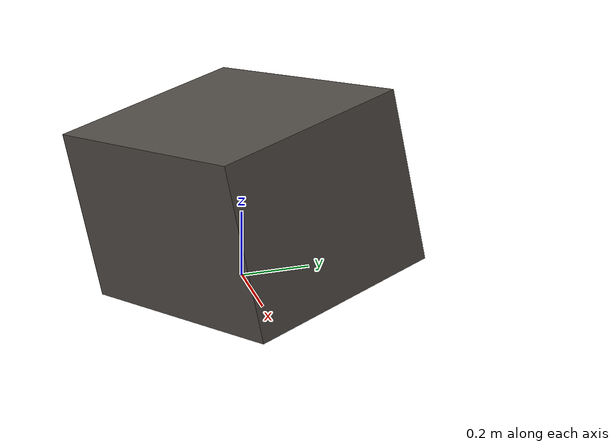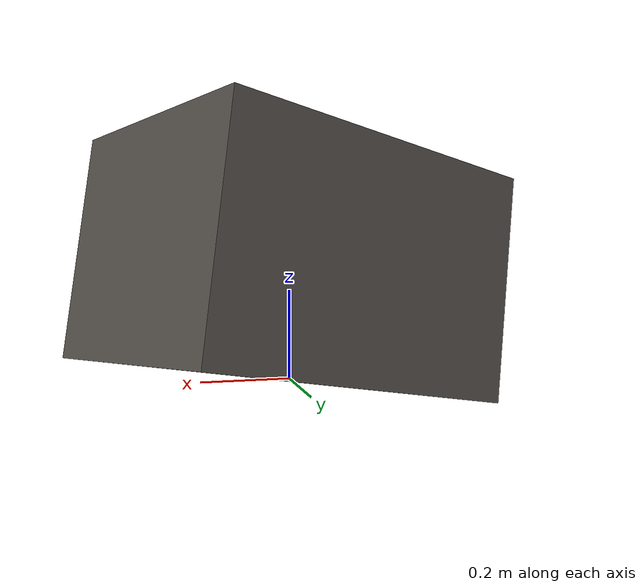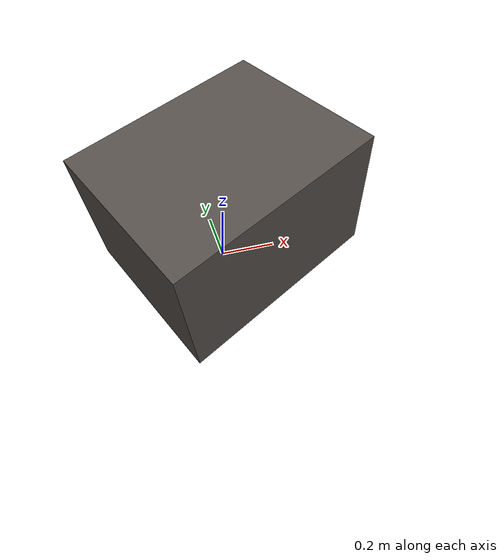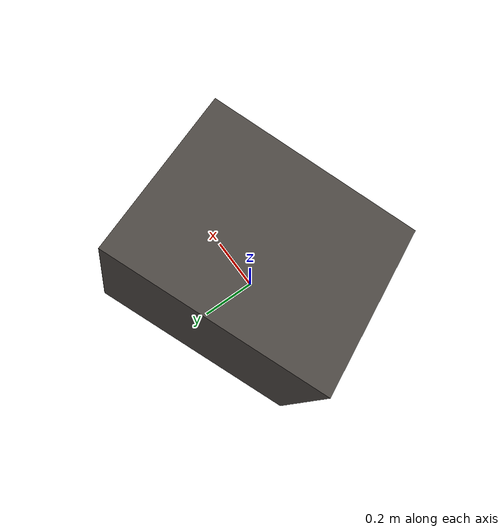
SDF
<?xml version="1.0"?>
<sdf version="1.9">
  <model name="lunar_rock_b">
    <static>true</static>
    <link name="body">
      <visual name="visual">
        <pose>0 0 0.25 0.1 -0.2 0.4</pose>
        <geometry>
          <box><size>0.75 0.6 0.5</size></box>
        </geometry>
        <material>
          <ambient>0.28 0.26 0.24 1</ambient>
          <diffuse>0.33 0.31 0.29 1</diffuse>
          <specular>0.05 0.05 0.05 1</specular>
        </material>
      </visual>
      <collision name="collision">
        <pose>0 0 0.25 0 0 0</pose>
        <geometry>
          <box><size>0.75 0.6 0.5</size></box>
        </geometry>
      </collision>
    </link>
  </model>
</sdf>
